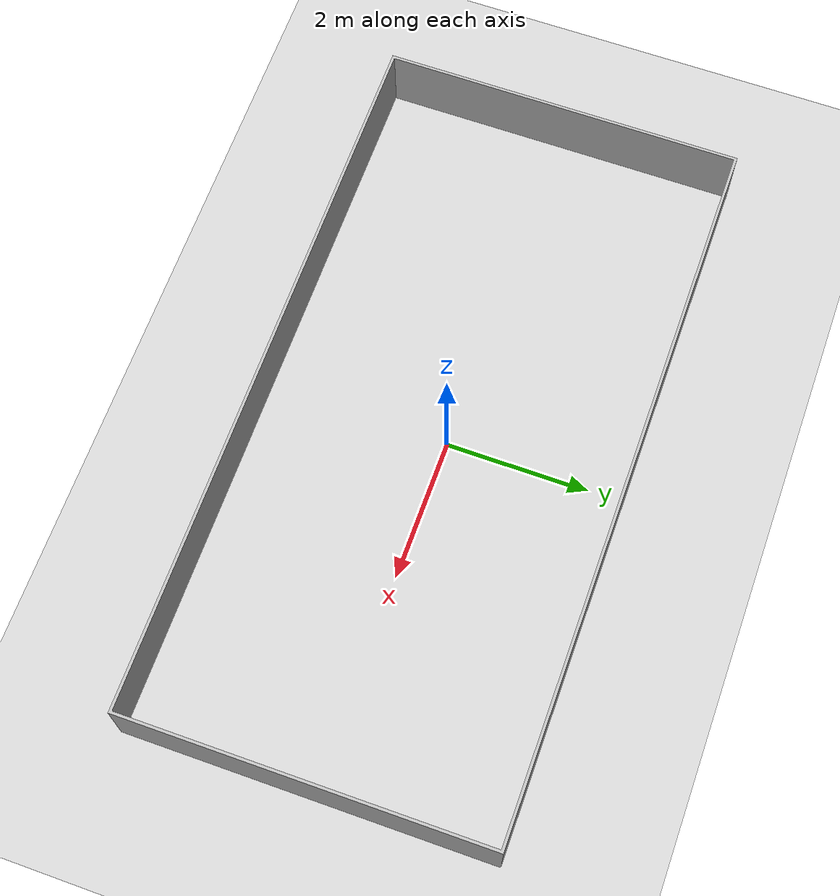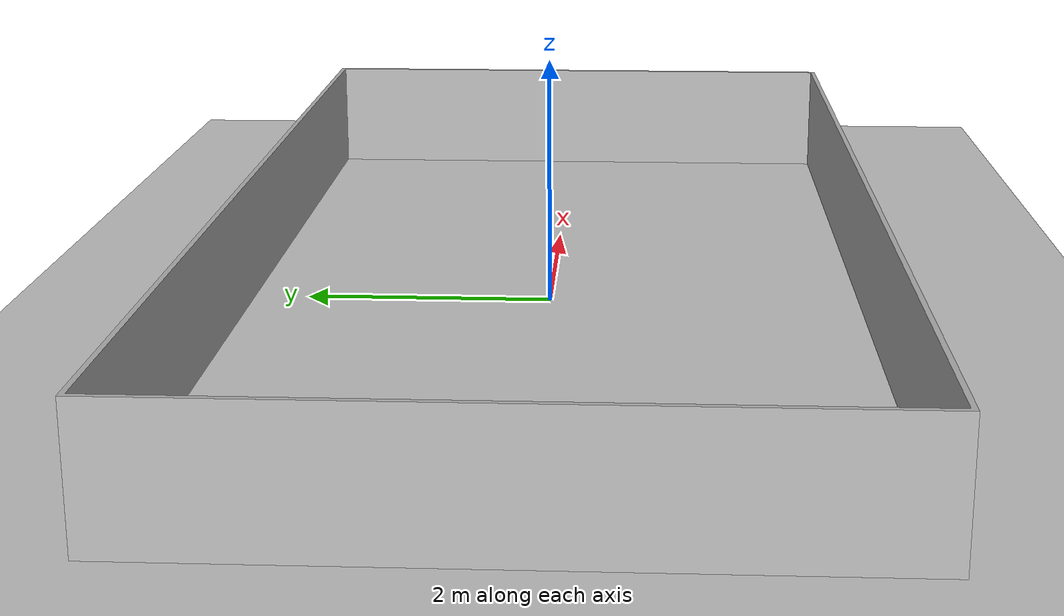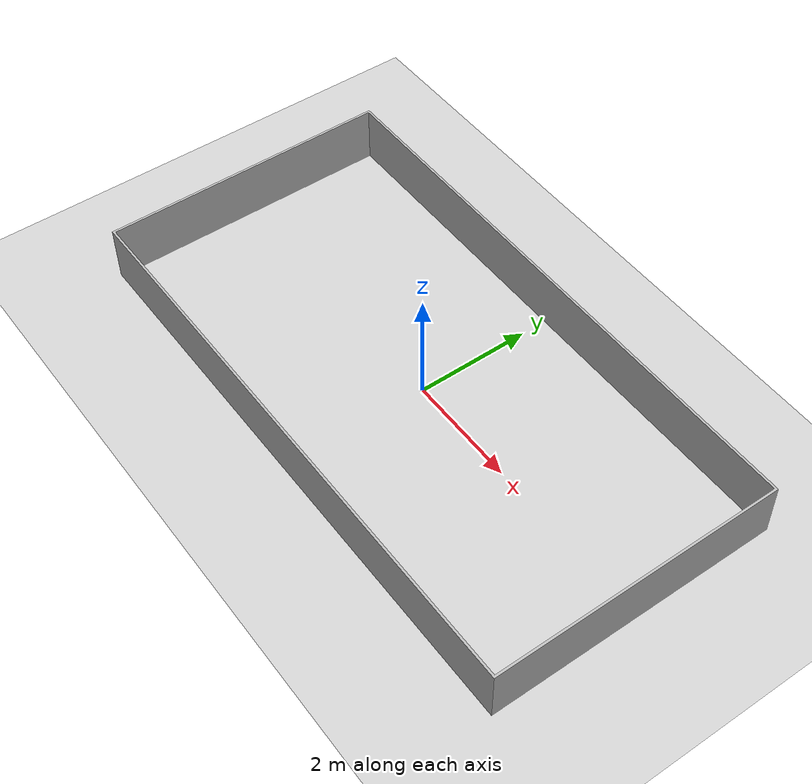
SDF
<?xml version="1.0" ?>
<sdf version="1.3">
	<world name="default">
		<physics type="ode">
			<gravity>0 0 -1</gravity>
			<ode>
				<solver>
					<type>quick</type>
					<dt>0.003</dt>
					<iters>20</iters>
					<sor>1.0</sor>
				</solver>
				<constraints>
					<cfm>0.0</cfm>
					<erp>0.2</erp>
					<contact_max_correcting_vel>100.0</contact_max_correcting_vel>
					<contact_surface_layer>0.0</contact_surface_layer>
				</constraints>
			</ode>
		</physics>
		<!-- A global light source -->
		<include>
			<uri>model://sun</uri>
		</include>
		<!-- A ground plane -->
		<include>
			<uri>model://ground_plane</uri>
		</include>
		<model name="simple_rectangle">
			<pose>-5 2.5 -0.01 1.57079632679 0 0</pose>
			<static>true</static>
			<link name="body">
				<visual name="visual">
					<geometry>
						<mesh>
							<uri>file://SimpleRectangleMap.STL</uri>
							<scale>0.001 0.001 0.001</scale>
						</mesh>
					</geometry>
				</visual>
				<collision name="collision">
					<geometry>
						<mesh>
							<uri>file://SimpleRectangleMap.STL</uri>
							<scale>0.001 0.001 0.001</scale>
						</mesh>
					</geometry>
				</collision>
			</link>
		</model>
		<gui fullscreen='0'>
			<camera name='user_camera'>
				<pose>-6.00844 -4.24066 13.567 0.0 1.57079632679 1.57079632679</pose>
				<view_controller>orbit</view_controller>
			</camera>
		</gui>
	</world>
</sdf>
